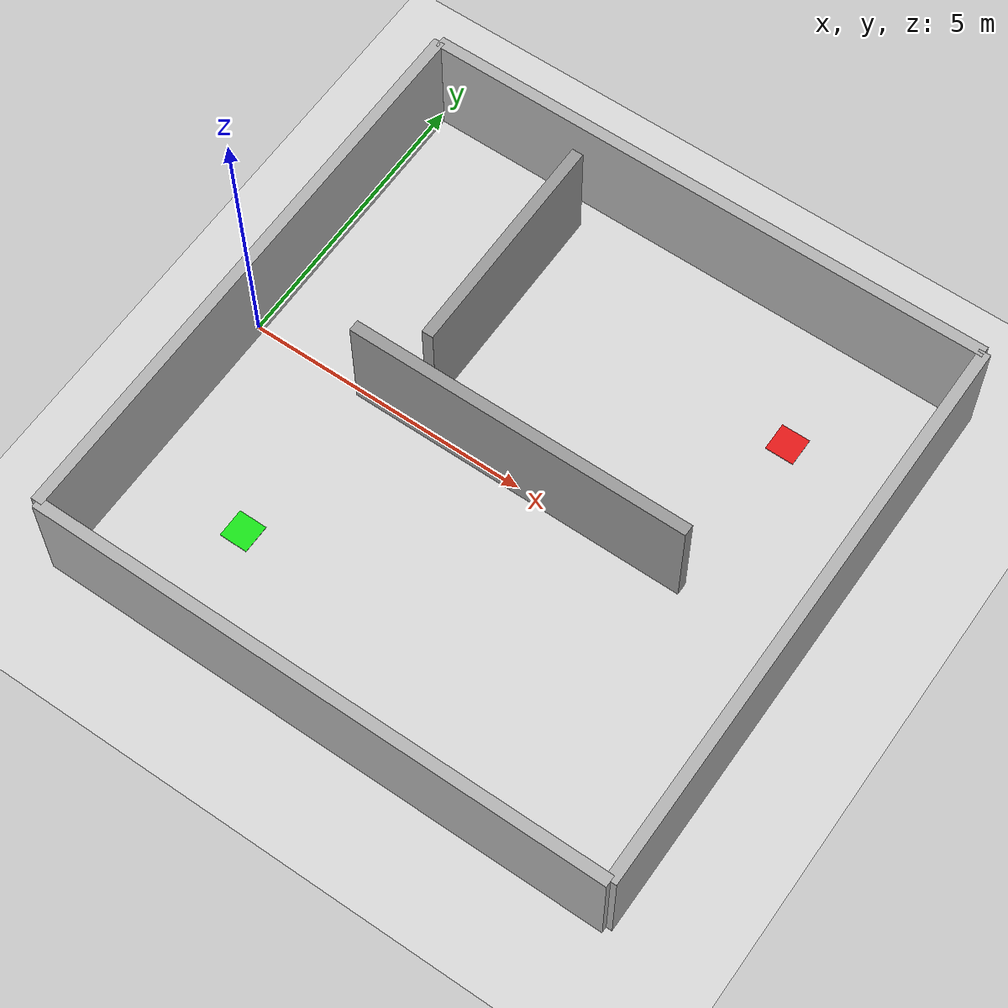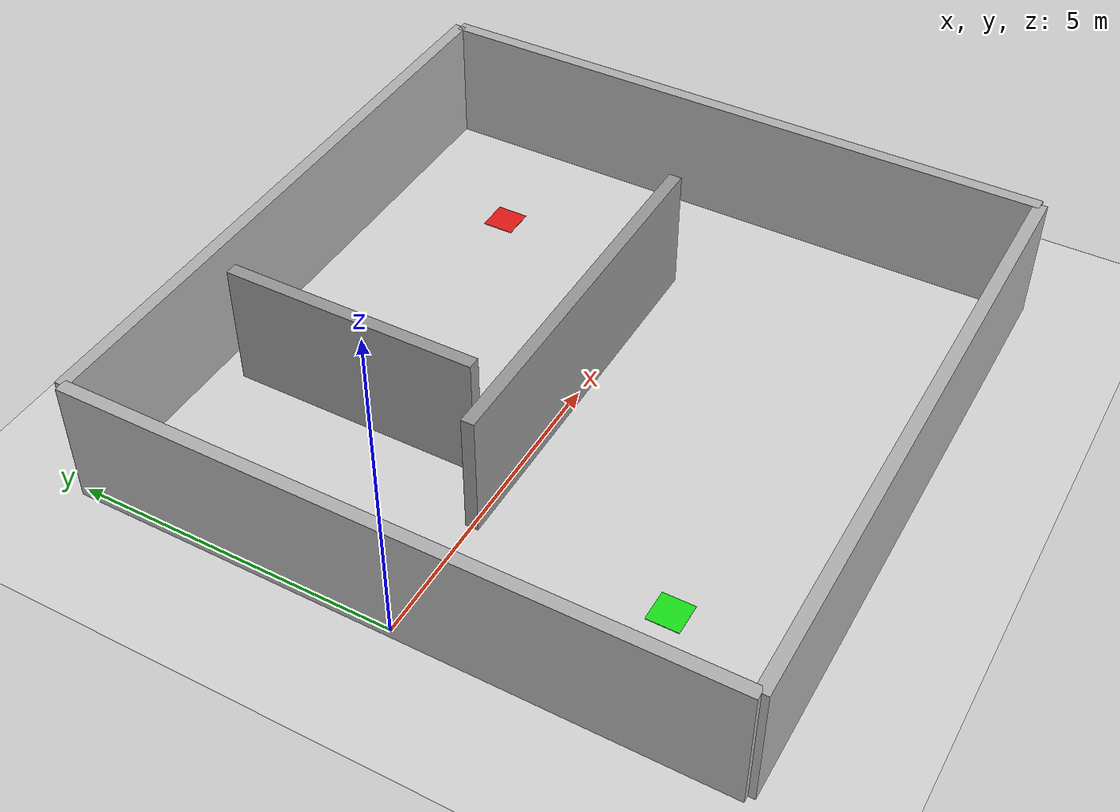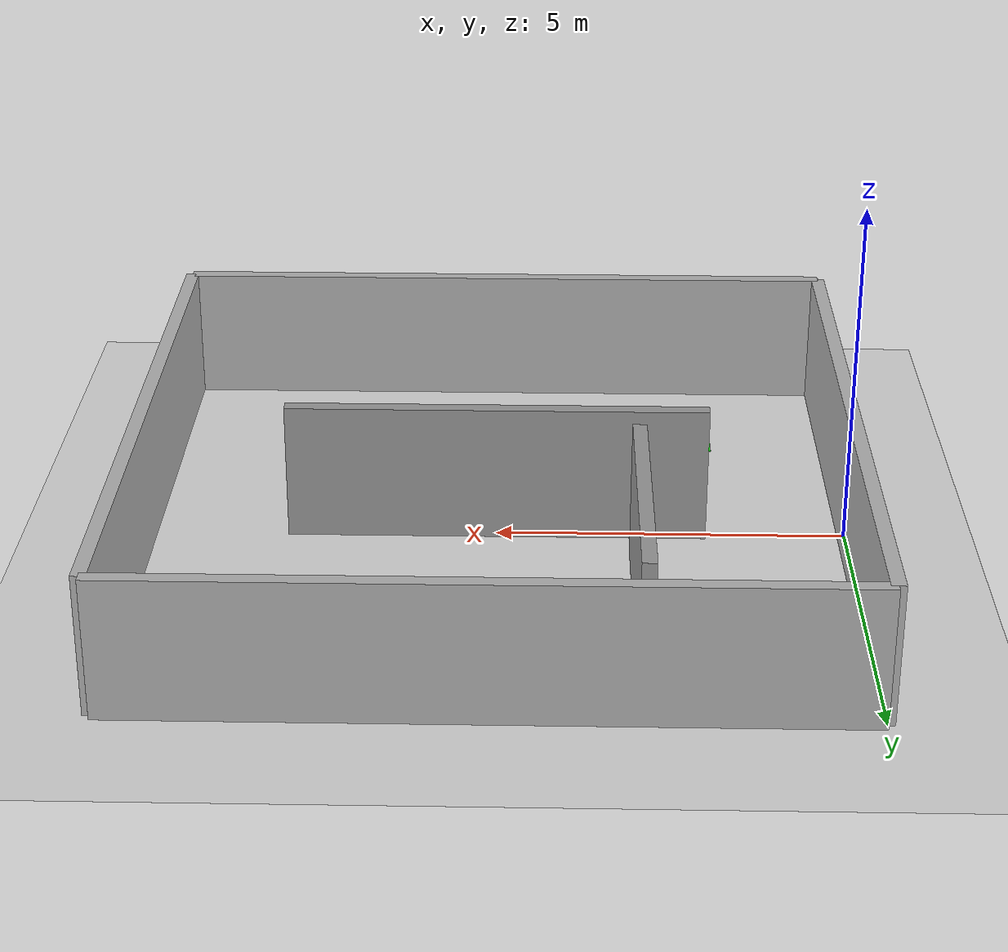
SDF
<?xml version="1.0"?>
<sdf version="1.9">
  <world name="nav_test">

    <!-- Gz System Plugins -->
    <plugin filename="gz-sim-physics-system" name="gz::sim::systems::Physics">
    </plugin>
    <plugin filename="gz-sim-user-commands-system" name="gz::sim::systems::UserCommands">
    </plugin>
    <plugin filename="gz-sim-scene-broadcaster-system" name="gz::sim::systems::SceneBroadcaster">
    </plugin>
    <plugin filename="gz-sim-sensors-system" name="gz::sim::systems::Sensors">
      <render_engine>ogre2</render_engine>
    </plugin>
    <plugin filename="gz-sim-imu-system" name="gz::sim::systems::Imu">
    </plugin>
    <plugin filename="gz-sim-contact-system" name="gz::sim::systems::Contact">
    </plugin>

    <!-- Physics -->
    <physics name="default" type="dart">
      <max_step_size>0.001</max_step_size>
      <real_time_factor>1.0</real_time_factor>
      <real_time_update_rate>1000</real_time_update_rate>
    </physics>

    <!-- Lighting -->
    <light type="directional" name="sun">
      <cast_shadows>true</cast_shadows>
      <pose>0 0 10 0 0 0</pose>
      <diffuse>0.8 0.8 0.8 1</diffuse>
      <specular>0.2 0.2 0.2 1</specular>
      <attenuation>
        <range>1000</range>
        <constant>0.9</constant>
        <linear>0.01</linear>
        <quadratic>0.001</quadratic>
      </attenuation>
      <direction>-0.5 0.1 -0.9</direction>
    </light>

    <!-- Ground Plane -->
    <model name="ground_plane">
      <static>true</static>
      <link name="ground_link">
        <collision name="ground_collision">
          <geometry>
            <plane>
              <normal>0 0 1</normal>
              <size>15 15</size>
            </plane>
          </geometry>
        </collision>
        <visual name="ground_visual">
          <geometry>
            <plane>
              <normal>0 0 1</normal>
              <size>15 15</size>
            </plane>
          </geometry>
          <material>
            <ambient>0.8 0.8 0.8 1</ambient>
            <diffuse>0.85 0.85 0.85 1</diffuse>
          </material>
        </visual>
      </link>
    </model>

    <!-- ═══════════════ Outer Walls (~10m x 10m room) ═══════════════ -->
    <model name="wall_north">
      <static>true</static>
      <pose>5 5 1 0 0 0</pose>
      <link name="wall_link">
        <collision name="col"><geometry><box><size>10 0.2 2.0</size></box></geometry></collision>
        <visual name="vis"><geometry><box><size>10 0.2 2.0</size></box></geometry>
          <material><ambient>0.6 0.6 0.6 1</ambient><diffuse>0.7 0.7 0.7 1</diffuse></material>
        </visual>
      </link>
    </model>

    <model name="wall_south">
      <static>true</static>
      <pose>5 -5 1 0 0 0</pose>
      <link name="wall_link">
        <collision name="col"><geometry><box><size>10 0.2 2.0</size></box></geometry></collision>
        <visual name="vis"><geometry><box><size>10 0.2 2.0</size></box></geometry>
          <material><ambient>0.6 0.6 0.6 1</ambient><diffuse>0.7 0.7 0.7 1</diffuse></material>
        </visual>
      </link>
    </model>

    <model name="wall_west">
      <static>true</static>
      <pose>0 0 1 0 0 0</pose>
      <link name="wall_link">
        <collision name="col"><geometry><box><size>0.2 10 2.0</size></box></geometry></collision>
        <visual name="vis"><geometry><box><size>0.2 10 2.0</size></box></geometry>
          <material><ambient>0.6 0.6 0.6 1</ambient><diffuse>0.7 0.7 0.7 1</diffuse></material>
        </visual>
      </link>
    </model>

    <model name="wall_east">
      <static>true</static>
      <pose>10 0 1 0 0 0</pose>
      <link name="wall_link">
        <collision name="col"><geometry><box><size>0.2 10 2.0</size></box></geometry></collision>
        <visual name="vis"><geometry><box><size>0.2 10 2.0</size></box></geometry>
          <material><ambient>0.6 0.6 0.6 1</ambient><diffuse>0.7 0.7 0.7 1</diffuse></material>
        </visual>
      </link>
    </model>

    <!-- ═══════════════ Internal walls creating corridors ═══════════════ -->
    <model name="divider_h">
      <static>true</static>
      <pose>5 0 1 0 0 0</pose>
      <link name="wall_link">
        <collision name="col"><geometry><box><size>6 0.2 2.0</size></box></geometry></collision>
        <visual name="vis"><geometry><box><size>6 0.2 2.0</size></box></geometry>
          <material><ambient>0.5 0.5 0.5 1</ambient><diffuse>0.6 0.6 0.6 1</diffuse></material>
        </visual>
      </link>
    </model>

    <model name="divider_v">
      <static>true</static>
      <pose>3 2.5 1 0 0 0</pose>
      <link name="wall_link">
        <collision name="col"><geometry><box><size>0.2 4 2.0</size></box></geometry></collision>
        <visual name="vis"><geometry><box><size>0.2 4 2.0</size></box></geometry>
          <material><ambient>0.5 0.5 0.5 1</ambient><diffuse>0.6 0.6 0.6 1</diffuse></material>
        </visual>
      </link>
    </model>

    <!-- Start marker (visual only, green) -->
    <model name="start_marker">
      <static>true</static>
      <pose>2 -3 0.01 0 0 0</pose>
      <link name="marker_link">
        <visual name="vis"><geometry><box><size>0.5 0.5 0.01</size></box></geometry>
          <material><ambient>0.1 0.8 0.1 1</ambient><diffuse>0.1 0.9 0.1 1</diffuse></material>
        </visual>
      </link>
    </model>

    <!-- Goal marker (visual only, red) -->
    <model name="goal_marker">
      <static>true</static>
      <pose>8 3 0.01 0 0 0</pose>
      <link name="marker_link">
        <visual name="vis"><geometry><box><size>0.5 0.5 0.01</size></box></geometry>
          <material><ambient>0.8 0.1 0.1 1</ambient><diffuse>0.9 0.1 0.1 1</diffuse></material>
        </visual>
      </link>
    </model>

  </world>
</sdf>
